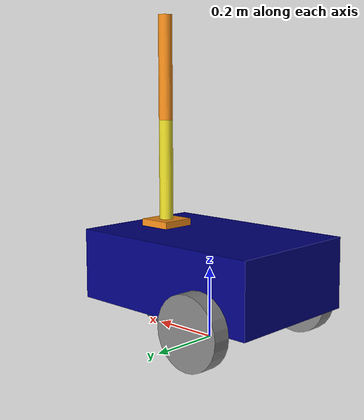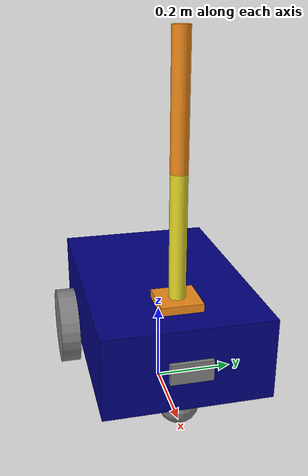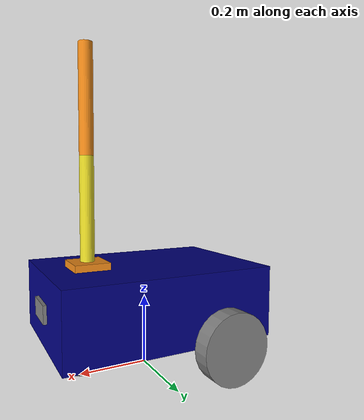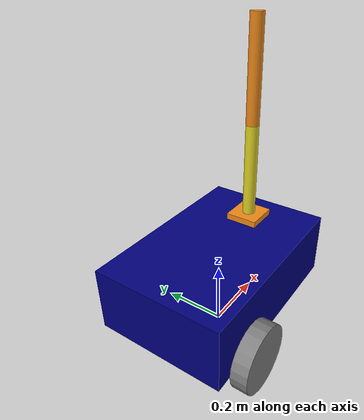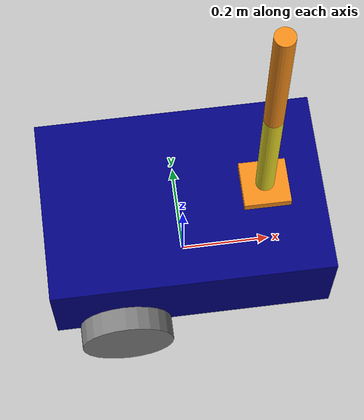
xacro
<?xml version="1.0"?>
<robot name="my_robot" xmlns:xacro="http://www.ros.org/wiki/xacro">

    <xacro:include filename="common_properties.xacro" />

    <xacro:include filename="mobile_base.xacro" />
    <xacro:include filename="mobile_base_gazebo.xacro" />
    <xacro:include filename="arm.xacro" />
    <xacro:include filename="camera.xacro" />

    <joint name="mobile_base_arm_joint" type="fixed">
        <parent link="base_link" />
        <child link="arm_base_link" />
        <origin xyz="${(base_length + arm_length) / 4.0} 0 ${base_height}" rpy="0 0 0" />
    </joint>
</robot>

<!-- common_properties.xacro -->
<robot xmlns:xacro="http://www.ros.org/wiki/xacro">
    <material name="green">
        <color rgba="0 0.5 0 1" />
    </material>

    <material name="blue">
        <color rgba="0 0 0.5 1" />
    </material>

    <material name="grey">
        <color rgba="0.5 0.5 0.5 1" />
    </material>

    <!-- https://en.wikipedia.org/wiki/List_of_moments_of_inertia#List_of_3D_inertia_tensors-->
    <!--
    https://docs.ros.org/en/jazzy/Tutorials/Intermediate/URDF/Adding-Physical-and-Collision-Properties-to-a-URDF-Model.html-->
    <xacro:macro name="box_inertia"
        params="m l w h xyz rpy">
        <inertial>
            <origin xyz="${xyz}" rpy="${rpy}" />
            <mass value="${m}" />
            <inertia ixx="${(m / 12) * (h*h + l*l)}" ixy="0" ixz="0" iyy="${(m/12) * (w*w + l*l)}"
                iyz="0" izz="${(m/12) * (w*w + h*h)}" />
        </inertial>
    </xacro:macro>

    <xacro:macro
        name="cylinder_inertia" params="m r h xyz rpy">
        <inertial>
            <origin xyz="${xyz}" rpy="${rpy}" />
            <mass value="${m}" />
            <inertia ixx="${(m / 12) * (3*(r*r) + h*h)}" ixy="0" ixz="0"
                iyy="${(m/12) * (3*(r*r)) + h*h}"
                iyz="0" izz="${(m/2) * (r*r)}" />
        </inertial>
    </xacro:macro>

    <xacro:macro
        name="sphere_inertia" params="m r xyz rpy">
        <inertial>
            <origin xyz="${xyz}" rpy="${rpy}" />
            <mass value="${m}" />
            <inertia ixx="${(2/5) * m * (r*r)}" ixy="0" ixz="0" iyy="${(2/5) * m * (r*r)}"
                iyz="0" izz="${(2/5) * m * (r*r)}" />
        </inertial>
    </xacro:macro>

</robot>

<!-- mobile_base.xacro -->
<robot xmlns:xacro="http://www.ros.org/wiki/xacro">
    <xacro:property name="base_length" value="0.6" />
    <xacro:property name="base_width" value="0.4" />
    <xacro:property name="base_height" value="0.2" />
    <xacro:property name="wheel_radius" value="0.1" />
    <xacro:property name="wheel_length" value="0.05" />
    <xacro:property name="castor_wheel_radius" value="${wheel_radius / 2.0}" />

    <link name="base_footprint">
    </link>

    <link name="base_link">
        <visual>
            <geometry>
                <box size="${base_length} ${base_width} ${base_height}" />
            </geometry>
            <origin xyz="0 0 ${base_height / 2.0}" rpy="0 0 0" />
            <material name="blue" />
        </visual>
        <collision>
            <geometry>
                <box size="${base_length} ${base_width} ${base_height}" />
            </geometry>
            <origin xyz="0 0 ${base_height / 2.0}" rpy="0 0 0" />
        </collision>
        <xacro:box_inertia m="5.0" l="${base_length}" w="${base_width}" h="${base_height}"
            xyz="0 0 ${base_height / 2.0}" rpy="0 0 0" />
    </link>

    <xacro:macro name="wheel_link" params="prefix">
        <link name="${prefix}_wheel_link">
            <visual>
                <geometry>
                    <cylinder radius="${wheel_radius}" length="${wheel_length}" />
                </geometry>
                <origin xyz="0 0 0" rpy="${pi / 2.0} 0 0" />
                <material name="grey" />
            </visual>
            <collision>
                <geometry>
                    <cylinder radius="${wheel_radius}" length="${wheel_length}" />
                </geometry>
                <origin xyz="0 0 0" rpy="${pi / 2.0} 0 0" />
            </collision>
            <xacro:cylinder_inertia m="1.0" r="${wheel_radius}" h="${wheel_length}"
                xyz="0 0 0" rpy="${pi / 2.0} 0 0" />
        </link>
    </xacro:macro>

    <xacro:wheel_link prefix="right" />
    <xacro:wheel_link prefix="left" />

    <link name="castor_wheel_link">
        <visual>
            <geometry>
                <sphere radius="${castor_wheel_radius}" />
            </geometry>
            <origin xyz="0 0 0" rpy="0 0 0" />
            <material name="grey" />
        </visual>
        <collision>
            <geometry>
                <sphere radius="${castor_wheel_radius}" />
            </geometry>
            <origin xyz="0 0 0" rpy="0 0 0" />

        </collision>
        <xacro:sphere_inertia m="0.5" r="${castor_wheel_radius}"
            xyz="0 0 0" rpy="0 0 0" />
    </link>

    <joint name="base_joint" type="fixed">

        <parent link="base_footprint" />
        <child link="base_link" />
        <origin xyz="0 0 ${wheel_radius}" rpy="0 0 0" />

    </joint>
    <joint name="base_castor_wheel_joint" type="fixed">
        <parent link="base_link" />
        <child link="castor_wheel_link" />
        <origin xyz="${base_length / 3.0} 0 ${-castor_wheel_radius}" rpy="0 0 0" />
    </joint>

    <joint name="base_right_wheel_joint" type="continuous">
        <parent link="base_link" />
        <child link="right_wheel_link" />
        <origin xyz="${-base_length / 4.0} ${-(base_width + wheel_length) / 2.0 } 0" rpy="0 0 0" />
        <axis xyz="0 1 0" />
    </joint>
    <joint name="base_left_wheel_joint" type="continuous">
        <parent link="base_link" />
        <child link="left_wheel_link" />
        <origin xyz="${-base_length / 4.0} ${(base_width + wheel_length) / 2.0 } 0" rpy="0 0 0" />
        <axis xyz="0 1 0" />
    </joint>

</robot>

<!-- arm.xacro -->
<robot xmlns:xacro="http://www.ros.org/wiki/xacro">

    <xacro:property name="arm_length" value="0.1" />
    <xacro:property name="arm_width" value="0.1" />
    <xacro:property name="arm_height" value="0.02" />
    <xacro:property name="arm_mass" value="0.5" />

    <xacro:property name="forearm_mass" value="0.3" />
    <xacro:property name="forearm_length" value="0.3" />
    <xacro:property name="forearm_radius" value="0.02" />

    <xacro:property name="hand_mass" value="0.3" />
    <xacro:property name="hand_length" value="0.3" />
    <xacro:property name="hand_radius" value="0.02" />

    <link name="arm_base_link">
        <visual>
            <geometry>
                <box size="${arm_length} ${arm_width} ${arm_height}" />
            </geometry>
            <material name="orange" />
            <origin xyz="0 0 ${arm_height / 2.0}" rpy="0 0 0" />
        </visual>
        <collision>
            <geometry>
                <box size="${arm_length} ${arm_width} ${arm_height}" />
            </geometry>
            <origin xyz="0 0 ${arm_height / 2.0}" rpy="0 0 0" />
        </collision>
        <xacro:box_inertia m="${arm_mass}" l="${2*arm_length}" w="${2*arm_width}" h="${2*arm_height}"
            xyz="0 0 ${arm_height / 2.0}" rpy="0 0 0" />
    </link>

    <link name="forearm_link">
        <visual>
            <geometry>
                <cylinder length="${forearm_length}" radius="${forearm_radius}" />
            </geometry>
            <material name="yellow" />
            <origin xyz="0 0 ${forearm_length / 2.0}" rpy="0 0 0" />
        </visual>
        <collision>
            <geometry>
                <cylinder length="${forearm_length}" radius="${forearm_radius}" />
            </geometry>
            <origin xyz="0 0 ${forearm_length / 2.0}" rpy="0 0 0" />
        </collision>
        <xacro:cylinder_inertia m="${forearm_mass}" r="${2*forearm_radius}" h="${2*forearm_length}"
            xyz="0 0 ${forearm_length / 2.0}" rpy="0 0 0" />
    </link>

    <link name="hand_link">
        <visual>
            <geometry>
                <cylinder length="${hand_length}" radius="${hand_radius}" />
            </geometry>
            <material name="orange" />
            <origin xyz="0 0 ${hand_length / 2.0}" rpy="0 0 0" />
        </visual>
        <collision>
            <geometry>
                <cylinder length="${hand_length}" radius="${hand_radius}" />
            </geometry>
            <origin xyz="0 0 ${hand_length / 2.0}" rpy="0 0 0" />
        </collision>
        <xacro:cylinder_inertia m="${hand_mass}" r="${2*hand_radius}" h="${2*hand_length}"
            xyz="0 0 ${hand_length / 2.0}" rpy="0 0 0" />

    </link>
    <joint name="forearm_hand_joint" type="revolute">
        <parent link="forearm_link" />
        <child link="hand_link" />
        <axis xyz="0 1 0" />
        <limit effort="100.0" lower="0.0" upper="${pi / 2}" velocity="100.0" />
        <dynamics friction="0.05" damping="0.1" />
        <origin xyz="0 0 ${forearm_length}" rpy="0 0 0" />
    </joint>

    <joint name="arm_base_forearm_joint" type="revolute">
        <parent link="arm_base_link" />
        <child link="forearm_link" />
        <axis xyz="0 1 0" />
        <limit effort="100.0" lower="0.0" upper="${pi / 2}" velocity="100.0" />
        <dynamics friction="0.05" damping="0.1" />
        <origin xyz="0 0 ${arm_height / 2}" rpy="0 0 0" />
    </joint>

    <gazebo>
        <plugin name="gazebo_ros_joint_pose_trajectory"
            filename="libgazebo_ros_joint_pose_trajectory.so">
            <!-- Update rate in Hz -->
            <update_rate>2</update_rate>
        </plugin>

    </gazebo>

    <gazebo>
        <plugin name="gazebo_ros_joint_state_publisher"
            filename="libgazebo_ros_joint_state_publisher.so">

            <!-- Update rate in Hertz -->
            <update_rate>10</update_rate>

            <!-- Name of joints in the model whose states will be published. -->
            <joint_name>arm_base_forearm_joint</joint_name>
            <joint_name>forearm_hand_joint</joint_name>

        </plugin>
    </gazebo>
    <gazebo reference="base_link">
        <material> Gazebo/Blue </material>
    </gazebo>
    <gazebo reference="hand_link">
        <material> Gazebo/Orange</material>
    </gazebo>
    <gazebo reference="forearm_link">
        <material> Gazebo/Yellow</material>
    </gazebo>
    <gazebo reference="arm_base_link">
        <material> Gazebo/Orange</material>
    </gazebo>

</robot>

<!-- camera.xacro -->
<robot xmlns:xacro="http://www.ros.org/wiki/xacro">

    <xacro:property name="camera_length" value="0.01" />

    <xacro:property name="camera_width" value="0.1" />

    <xacro:property name="camera_height" value="0.05" />

    <link name="camera_link">
        <visual>
            <geometry>
                <box size="${camera_length} ${camera_width} ${camera_height}" />
            </geometry>
            <material name="grey" />

        </visual>
        <collision>
            <geometry>
                <box size="${camera_length} ${camera_width} ${camera_height}" />
            </geometry>
        </collision>
        <xacro:box_inertia m="0.1" l="${camera_length}" w="${camera_width}" h="${camera_height}"
            xyz="0 0 0" rpy="0 0 0" />
    </link>

    <joint name="base_camera_joint" type="fixed">
        <parent link="base_link" />
        <child link="camera_link" />
        <origin xyz="${(base_length + camera_length) / 2.0} 0 ${base_height / 2.0 }" rpy="0 0 0" />
    </joint>

    <!--https://classic.gazebosim.org/tutorials?tut=ros_gzplugins -->
    <!-- https://github.com/ros-simulation/gazebo_ros_pkgs/tree/ros2/gazebo_plugins-->
    <gazebo reference="camera_link">
        <material> Gazebo/Red </material>
        <sensor name="camera_sensor" type="camera">
            <pose>0 0 0 0 0 0</pose> <!--position
            plus orientation-->
            <visualize>true</visualize> <!--visual
            the camera in gazebo -->
            <update_rate>10.0</update_rate> <!-- update rate of the sensor in hertz-->
            <plugin name="camera_controller" filename="libgazebo_ros_camera.so">
                <!-- Set TF frame name. If empty, defaults to link name -->
                <frame_name>camera_link</frame_name>
            </plugin>
        </sensor>
    </gazebo>

</robot>
